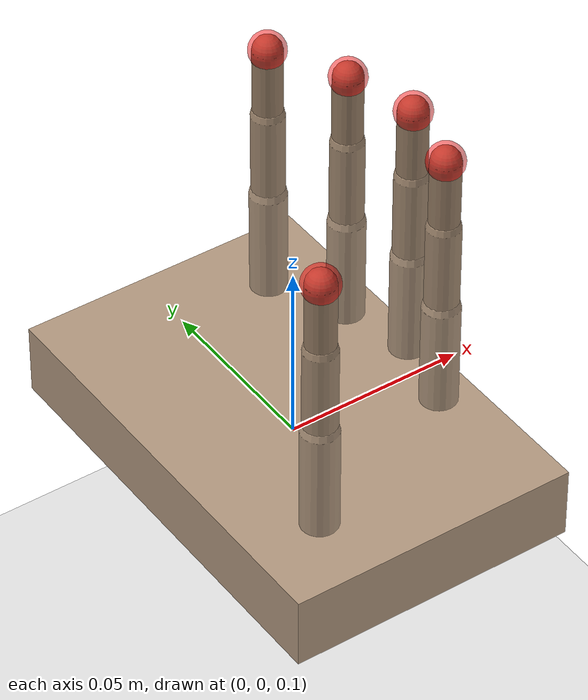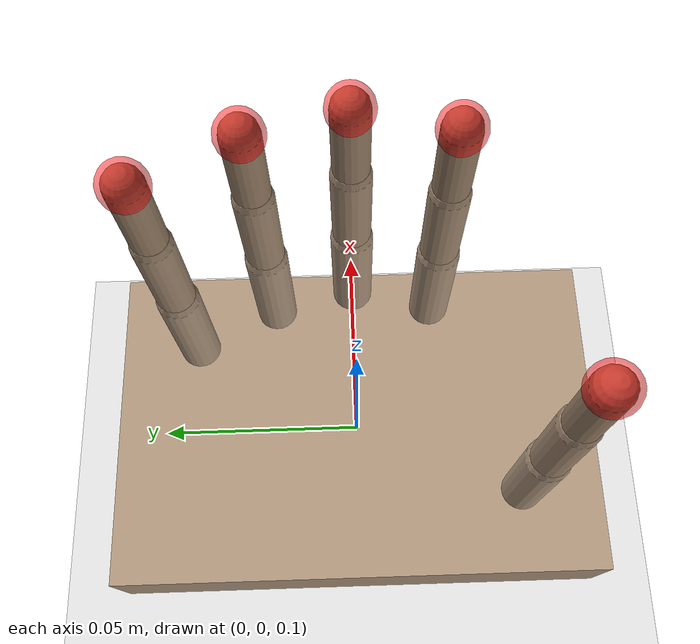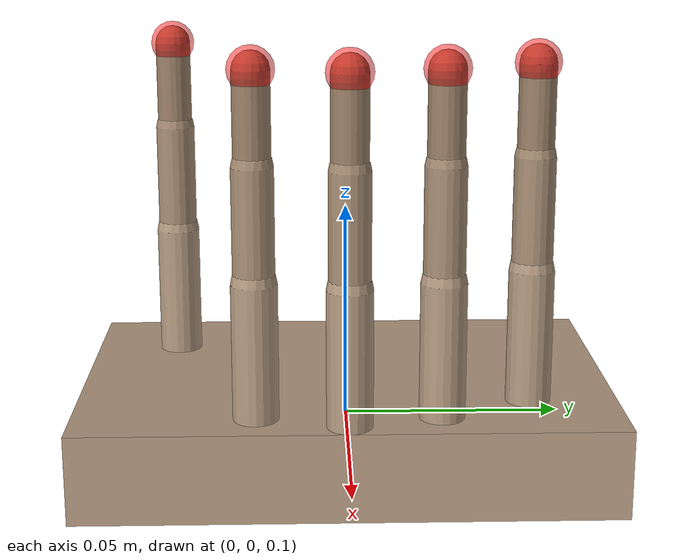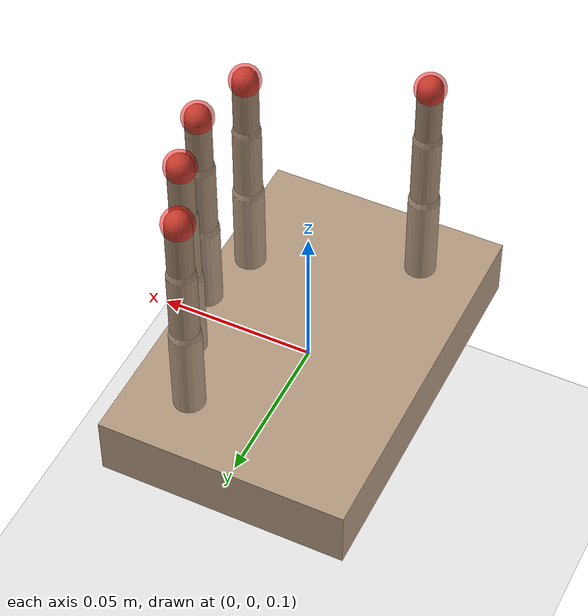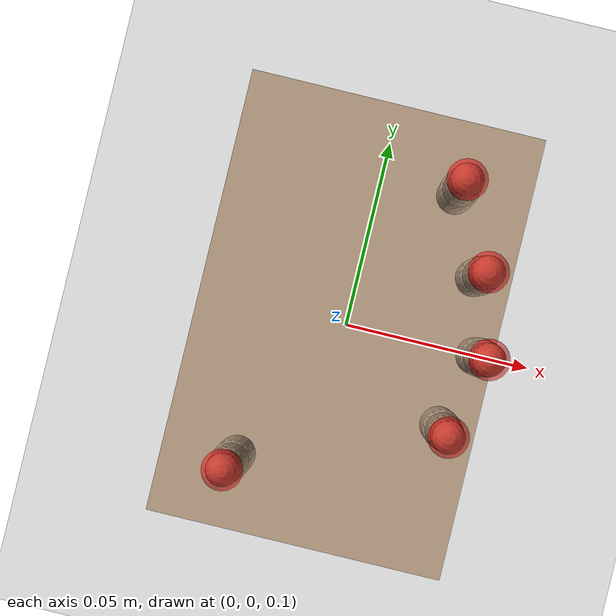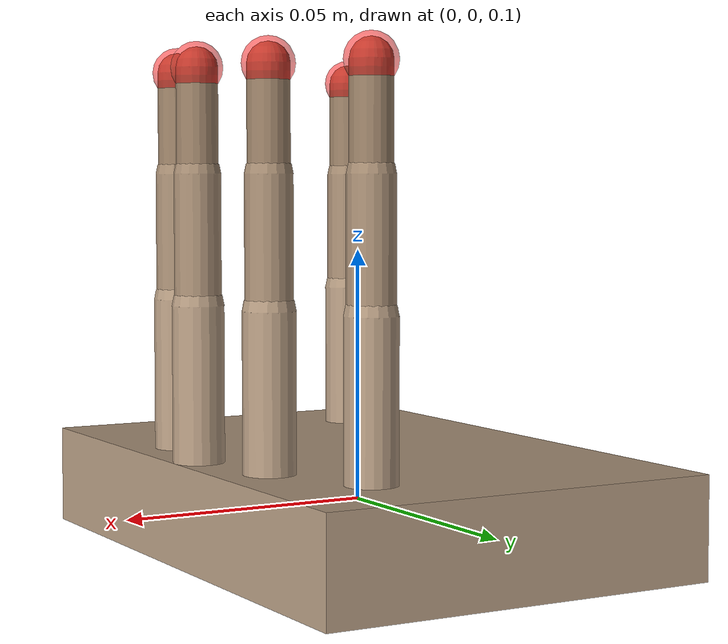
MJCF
<mujoco model="human_hand_5finger">
  <compiler angle="degree"/>
  <option timestep="0.002" gravity="0 0 -9.81"/>
  <default><joint damping="0.05"/><geom friction="0.8 0.01 0.01"/></default>
  <worldbody>
    <light diffuse="0.5 0.5 0.5" pos="0 0 3" dir="0 0 -1"/>
    <geom name="floor" type="plane" size="1 1 0.1" rgba="0.9 0.9 0.9 1"/>
    <body name="palm" pos="0 0 0.1">
      <geom name="palm_geom" type="box" size="0.04 0.06 0.01" rgba="0.7 0.6 0.5 1"/>
      <freejoint name="palm_root"/>
      <body name="thumb" pos="-0.02 -0.04 0" euler="0 0 -60">
        <joint name="thumb_mcp_flex" type="hinge" axis="0 1 0" range="-10 90"/>
        <geom name="thumb_proximal" type="capsule" size="0.005" fromto="0 0 0 0 0 0.04" rgba="0.7 0.6 0.5 1"/>
        <body name="thumb_mid" pos="0 0 0.04">
          <joint name="thumb_pip" type="hinge" axis="0 1 0" range="0 100"/>
          <geom name="thumb_middle" type="capsule" size="0.0045000000000000005" fromto="0 0 0 0 0 0.025" rgba="0.65 0.55 0.45 1"/>
          <body name="thumb_dis" pos="0 0 0.025">
            <joint name="thumb_dip" type="hinge" axis="0 1 0" range="0 80"/>
            <geom name="thumb_distal" type="capsule" size="0.004" fromto="0 0 0 0 0 0.02" rgba="0.6 0.5 0.4 1"/>
            <site name="thumb_tip" pos="0 0 0.02" size="0.005" type="sphere" rgba="1 0 0 0.5"/>
          </body>
        </body>
      </body>
      <body name="index" pos="0.03 -0.02 0" euler="0 0 -15">
        <joint name="index_mcp_flex" type="hinge" axis="0 1 0" range="-10 90"/>
        <joint name="index_mcp_abd" type="hinge" axis="0 0 1" range="-20 20"/>
        <geom name="index_proximal" type="capsule" size="0.005" fromto="0 0 0 0 0 0.04" rgba="0.7 0.6 0.5 1"/>
        <body name="index_mid" pos="0 0 0.04">
          <joint name="index_pip" type="hinge" axis="0 1 0" range="0 100"/>
          <geom name="index_middle" type="capsule" size="0.0045000000000000005" fromto="0 0 0 0 0 0.025" rgba="0.65 0.55 0.45 1"/>
          <body name="index_dis" pos="0 0 0.025">
            <joint name="index_dip" type="hinge" axis="0 1 0" range="0 80"/>
            <geom name="index_distal" type="capsule" size="0.004" fromto="0 0 0 0 0 0.02" rgba="0.6 0.5 0.4 1"/>
            <site name="index_tip" pos="0 0 0.02" size="0.005" type="sphere" rgba="1 0 0 0.5"/>
          </body>
        </body>
      </body>
      <body name="middle" pos="0.035 0 0" euler="0 0 0">
        <joint name="middle_mcp_flex" type="hinge" axis="0 1 0" range="-10 90"/>
        <joint name="middle_mcp_abd" type="hinge" axis="0 0 1" range="-20 20"/>
        <geom name="middle_proximal" type="capsule" size="0.005" fromto="0 0 0 0 0 0.04" rgba="0.7 0.6 0.5 1"/>
        <body name="middle_mid" pos="0 0 0.04">
          <joint name="middle_pip" type="hinge" axis="0 1 0" range="0 100"/>
          <geom name="middle_middle" type="capsule" size="0.0045000000000000005" fromto="0 0 0 0 0 0.025" rgba="0.65 0.55 0.45 1"/>
          <body name="middle_dis" pos="0 0 0.025">
            <joint name="middle_dip" type="hinge" axis="0 1 0" range="0 80"/>
            <geom name="middle_distal" type="capsule" size="0.004" fromto="0 0 0 0 0 0.02" rgba="0.6 0.5 0.4 1"/>
            <site name="middle_tip" pos="0 0 0.02" size="0.005" type="sphere" rgba="1 0 0 0.5"/>
          </body>
        </body>
      </body>
      <body name="ring" pos="0.03 0.02 0" euler="0 0 15">
        <joint name="ring_mcp_flex" type="hinge" axis="0 1 0" range="-10 90"/>
        <joint name="ring_mcp_abd" type="hinge" axis="0 0 1" range="-20 20"/>
        <geom name="ring_proximal" type="capsule" size="0.005" fromto="0 0 0 0 0 0.04" rgba="0.7 0.6 0.5 1"/>
        <body name="ring_mid" pos="0 0 0.04">
          <joint name="ring_pip" type="hinge" axis="0 1 0" range="0 100"/>
          <geom name="ring_middle" type="capsule" size="0.0045000000000000005" fromto="0 0 0 0 0 0.025" rgba="0.65 0.55 0.45 1"/>
          <body name="ring_dis" pos="0 0 0.025">
            <joint name="ring_dip" type="hinge" axis="0 1 0" range="0 80"/>
            <geom name="ring_distal" type="capsule" size="0.004" fromto="0 0 0 0 0 0.02" rgba="0.6 0.5 0.4 1"/>
            <site name="ring_tip" pos="0 0 0.02" size="0.005" type="sphere" rgba="1 0 0 0.5"/>
          </body>
        </body>
      </body>
      <body name="pinky" pos="0.02 0.04 0" euler="0 0 30">
        <joint name="pinky_mcp_flex" type="hinge" axis="0 1 0" range="-10 90"/>
        <joint name="pinky_mcp_abd" type="hinge" axis="0 0 1" range="-20 20"/>
        <geom name="pinky_proximal" type="capsule" size="0.005" fromto="0 0 0 0 0 0.04" rgba="0.7 0.6 0.5 1"/>
        <body name="pinky_mid" pos="0 0 0.04">
          <joint name="pinky_pip" type="hinge" axis="0 1 0" range="0 100"/>
          <geom name="pinky_middle" type="capsule" size="0.0045000000000000005" fromto="0 0 0 0 0 0.025" rgba="0.65 0.55 0.45 1"/>
          <body name="pinky_dis" pos="0 0 0.025">
            <joint name="pinky_dip" type="hinge" axis="0 1 0" range="0 80"/>
            <geom name="pinky_distal" type="capsule" size="0.004" fromto="0 0 0 0 0 0.02" rgba="0.6 0.5 0.4 1"/>
            <site name="pinky_tip" pos="0 0 0.02" size="0.005" type="sphere" rgba="1 0 0 0.5"/>
          </body>
        </body>
      </body>
    </body>
  </worldbody>
  <actuator>
    <position name="thumb_mcp_flex_act" joint="thumb_mcp_flex" kp="80" kv="8"/>
    <position name="thumb_pip_act" joint="thumb_pip" kp="60" kv="6"/>
    <position name="thumb_dip_act" joint="thumb_dip" kp="50" kv="5"/>
    <position name="index_mcp_flex_act" joint="index_mcp_flex" kp="80" kv="8"/>
    <position name="index_mcp_abd_act" joint="index_mcp_abd" kp="40" kv="4"/>
    <position name="index_pip_act" joint="index_pip" kp="60" kv="6"/>
    <position name="index_dip_act" joint="index_dip" kp="50" kv="5"/>
    <position name="middle_mcp_flex_act" joint="middle_mcp_flex" kp="80" kv="8"/>
    <position name="middle_mcp_abd_act" joint="middle_mcp_abd" kp="40" kv="4"/>
    <position name="middle_pip_act" joint="middle_pip" kp="60" kv="6"/>
    <position name="middle_dip_act" joint="middle_dip" kp="50" kv="5"/>
    <position name="ring_mcp_flex_act" joint="ring_mcp_flex" kp="80" kv="8"/>
    <position name="ring_mcp_abd_act" joint="ring_mcp_abd" kp="40" kv="4"/>
    <position name="ring_pip_act" joint="ring_pip" kp="60" kv="6"/>
    <position name="ring_dip_act" joint="ring_dip" kp="50" kv="5"/>
    <position name="pinky_mcp_flex_act" joint="pinky_mcp_flex" kp="80" kv="8"/>
    <position name="pinky_mcp_abd_act" joint="pinky_mcp_abd" kp="40" kv="4"/>
    <position name="pinky_pip_act" joint="pinky_pip" kp="60" kv="6"/>
    <position name="pinky_dip_act" joint="pinky_dip" kp="50" kv="5"/>
  </actuator>
  <sensor>
    <touch name="thumb_touch" site="thumb_tip"/>
    <touch name="index_touch" site="index_tip"/>
    <touch name="middle_touch" site="middle_tip"/>
    <touch name="ring_touch" site="ring_tip"/>
    <touch name="pinky_touch" site="pinky_tip"/>
  </sensor>
</mujoco>
